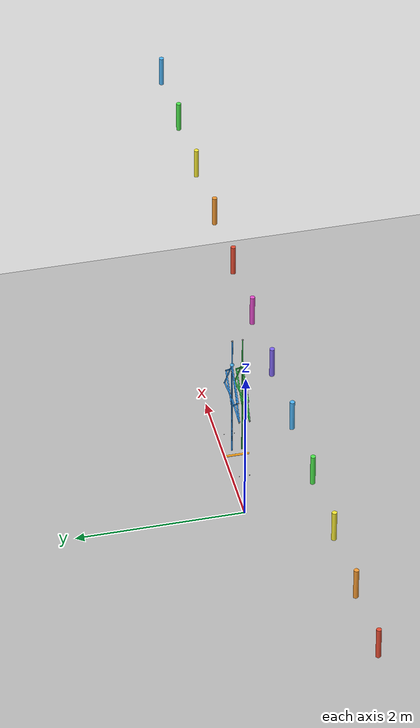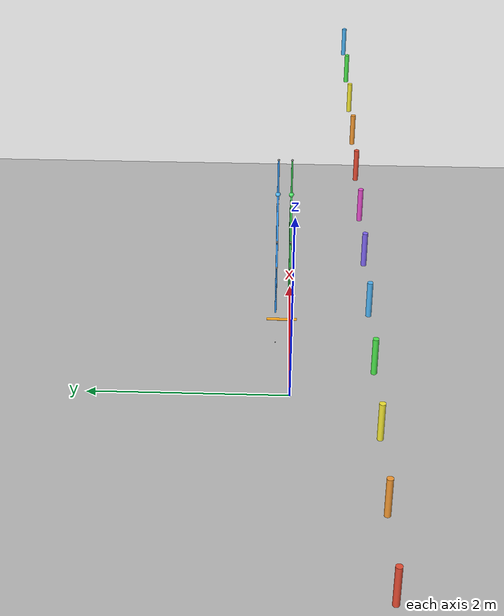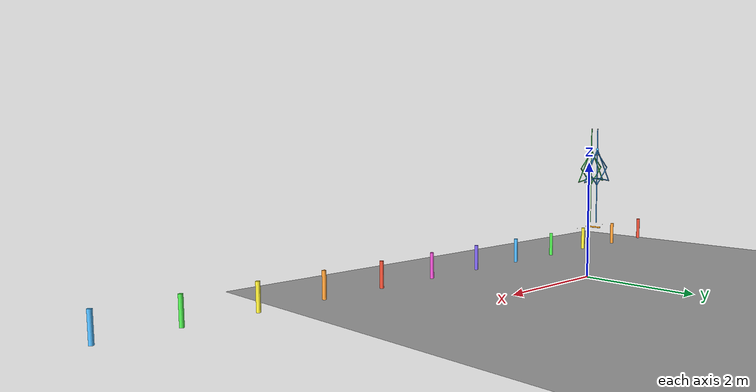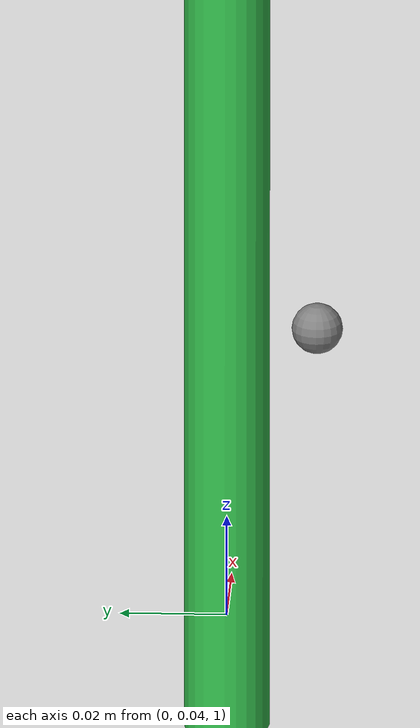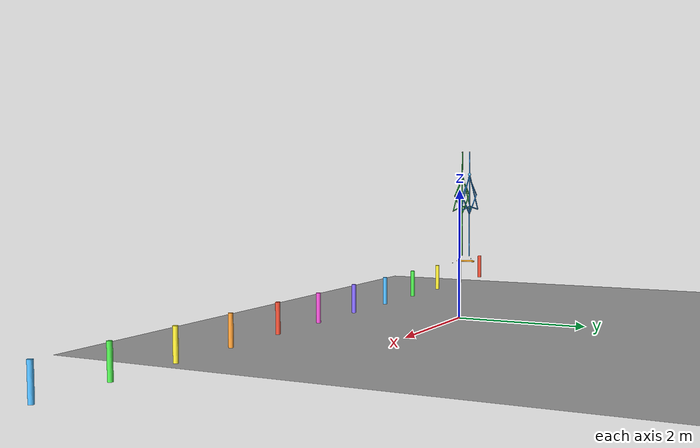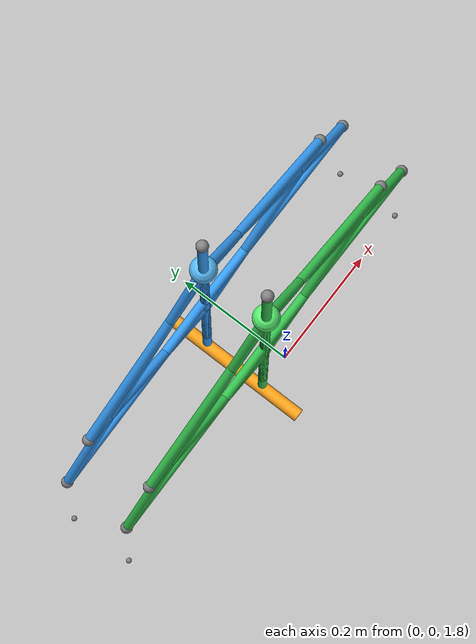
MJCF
<mujoco model="Strandbeest_4Legs">

  <compiler angle="radian" inertiafromgeom="true" autolimits="true" />

  <option gravity="0 0 -9.81" timestep="0.0005" integrator="implicitfast" iterations="800" solver="Newton" tolerance="1e-12" noslip_iterations="10" noslip_tolerance="1e-10" />

  <visual>
    <rgba haze="0.15 0.25 0.35 1" />
  </visual>

  <default>
    <joint damping="0.5" armature="0.005" />
    <geom contype="0" conaffinity="0" friction="0.8 0.1 0.1" rgba="0.5 0.5 0.5 1" density="500" />

  </default>

  <asset>
    <!-- existing materials -->
    <material name="frame" rgba="0.184 0.282 0.345 1" />
    <material name="crank" rgba="1.0 0.639 0.098 1" />
    <material name="foot_mat" rgba="0.9 0.2 0.1 1" />
    <material name="pair04" rgba="0.20 0.75 0.30 1" />
    <material name="pair05" rgba="0.20 0.60 0.95 1" />
    <material name="foot_pair04" rgba="0.35 0.95 0.45 1" />
    <material name="foot_pair05" rgba="0.35 0.75 1.00 1" />

    <!-- NEW: sky and ground textures -->
    <texture name="skybox" type="skybox" builtin="gradient"
             rgb1="0.35 0.55 0.75" rgb2="0.05 0.08 0.15"
             width="512" height="3072" />

    <texture name="grid_tex" type="2d" builtin="checker"
             rgb1="0.25 0.26 0.28" rgb2="0.35 0.36 0.40"
             width="512" height="512" />
    <material name="grid_mat" texture="grid_tex"
              texrepeat="40 10" texuniform="true" reflectance="0.15" />
</asset>

  <worldbody>
<body name="markers" pos="0 0 0">
    <geom type="cylinder" size="0.03 0.2" pos="-3 -0.8 0.5" rgba="0.9 0.3 0.2 1" />
    <geom type="cylinder" size="0.03 0.2" pos="-2 -0.8 0.5" rgba="0.95 0.6 0.2 1" />
    <geom type="cylinder" size="0.03 0.2" pos="-1 -0.8 0.5" rgba="0.95 0.9 0.2 1" />
    <geom type="cylinder" size="0.03 0.2" pos=" 0 -0.8 0.5" rgba="0.3 0.9 0.3 1" />
    <geom type="cylinder" size="0.03 0.2" pos=" 1 -0.8 0.5" rgba="0.3 0.7 0.95 1" />
    <geom type="cylinder" size="0.03 0.2" pos=" 2 -0.8 0.5" rgba="0.5 0.4 0.95 1" />
    <geom type="cylinder" size="0.03 0.2" pos=" 3 -0.8 0.5" rgba="0.9 0.3 0.8 1" />
    <geom type="cylinder" size="0.03 0.2" pos=" 4 -0.8 0.5" rgba="0.9 0.3 0.2 1" />
    <geom type="cylinder" size="0.03 0.2" pos=" 5 -0.8 0.5" rgba="0.95 0.6 0.2 1" />
    <geom type="cylinder" size="0.03 0.2" pos=" 6 -0.8 0.5" rgba="0.95 0.9 0.2 1" />
    <geom type="cylinder" size="0.03 0.2" pos=" 7 -0.8 0.5" rgba="0.3 0.9 0.3 1" />
    <geom type="cylinder" size="0.03 0.2" pos=" 8 -0.8 0.5" rgba="0.3 0.7 0.95 1" />
</body>
    <body name="crossbar" pos="0 0 0.9">
      <joint name="root_slide_x" type="slide" axis="1 0 0" damping="2.0" />
      <geom name="crossbar_geom" type="cylinder" size="0.012 0.14" pos="0 0.10 0" euler="1.5708 0 0" material="crank" />

      <site name="base_p04_l_site" pos="-0.38 0.04000 0" size="0.005" />

      <body name="crank_axle_p04_l" pos="0 0.04000 0.078">
        <joint name="joint_crossbar_crank_p04_l" type="hinge" axis="0 1 0" />

        <body name="bar_m_p04_l" pos="0 0 0" euler="0 0 0">
          <geom name="bar_m_geom_p04_l" type="cylinder" size="0.008 0.075" pos="0 0 0.075" material="pair04" />

          <body name="bar_j_p04_l" pos="0 0 0.15">
            <joint name="joint_m_j_p04_l" type="hinge" axis="0 1 0" />
            <geom name="bar_j_geom_p04_l" type="cylinder" size="0.008 0.25" pos="0 0 0.25" material="pair04" />

            <body name="bar_k_p04_l" pos="0 0 0">
              <joint name="joint_j_k_p04_l" type="hinge" axis="0 1 0" />
              <geom name="bar_k_geom_p04_l" type="cylinder" size="0.008 0.3095" pos="0 0 0.3095" material="pair04" />

              <body name="bar_c_p04_l" pos="0 0 0.619">
                <joint name="joint_k_c_p04_l" type="hinge" axis="0 1 0" />
                <geom name="bar_c_geom_p04_l" type="cylinder" size="0.008 0.1965" pos="0 0 0.1965" material="pair04" />
                <site name="bar_c_tip_p04_l" pos="0 0 0.393" size="0.01" />
              </body>

              <body name="bars_g_h_i_p04_l" pos="0 0 0.619">
                <joint name="joint_k_i_p04_l" type="hinge" axis="0 1 0" />
                <geom name="ghi_g_p04_l" type="cylinder" size="0.008 0.245" pos="0 0 0.245" material="pair04" />
                <geom name="ghi_h_p04_l" type="cylinder" size="0.008 0.1835" pos="0.1812 0 -0.0291" euler="0 1.73 0" material="pair04" />
                <geom name="ghi_i_p04_l" type="cylinder" size="0.008 0.3285" pos="0.1811 0 0.2159" euler="0 2.5576 0" material="pair04" />
                <geom name="foot_p04_l" type="sphere" size="0.022" pos="0 0 0.49" contype="1" conaffinity="1" material="foot_pair04" />
                <site name="ghi_loopsite_p04_l" pos="0.3624 0 -0.0582" size="0.01" />
              </body>
            </body>

            <body name="bars_b_d_e_p04_l" pos="0 0 0.50">
              <joint name="joint_j_e_p04_l" type="hinge" axis="0 1 0" />
              <geom name="bde_b_p04_l" type="cylinder" size="0.008 0.279" pos="0 0 0.279" material="pair04" />
              <geom name="bde_d_p04_l" type="cylinder" size="0.008 0.2005" pos="-0.1488 0 0.4236" euler="0 -2.3056 0" material="pair04" />
              <geom name="bde_e_p04_l" type="cylinder" size="0.008 0.2075" pos="-0.1489 0 0.1446" euler="0 -0.8 0" material="pair04" />
              <site name="bde_loopsite_p04_l" pos="-0.2978 0 0.2892" size="0.01" />

              <body name="bar_f_p04_l" pos="0 0 0.558">
                <joint name="joint_e_f_p04_l" type="hinge" axis="0 1 0" />
                <geom name="bar_f_geom_p04_l" type="cylinder" size="0.008 0.197" pos="0 0 0.197" material="pair04" />
                <site name="bar_f_tip_p04_l" pos="0 0 0.394" size="0.01" />
              </body>
            </body>

          </body>
        </body>
      </body>

      <site name="base_p04_r_site" pos="0.38 0.04000 0" size="0.005" />

      <body name="crank_axle_p04_r" pos="0 0.04000 0.078">
        <joint name="joint_crossbar_crank_p04_r" type="hinge" axis="0 1 0" />

        <body name="bar_m_p04_r" pos="0 0 0" euler="0 0 0">
          <geom name="bar_m_geom_p04_r" type="cylinder" size="0.008 0.075" pos="0 0 0.075" material="pair04" />

          <body name="bar_j_p04_r" pos="0 0 0.15">
            <joint name="joint_m_j_p04_r" type="hinge" axis="0 1 0" />
            <geom name="bar_j_geom_p04_r" type="cylinder" size="0.008 0.25" pos="0 0 0.25" material="pair04" />

            <body name="bar_k_p04_r" pos="0 0 0">
              <joint name="joint_j_k_p04_r" type="hinge" axis="0 1 0" />
              <geom name="bar_k_geom_p04_r" type="cylinder" size="0.008 0.3095" pos="0 0 0.3095" material="pair04" />

              <body name="bar_c_p04_r" pos="0 0 0.619">
                <joint name="joint_k_c_p04_r" type="hinge" axis="0 1 0" />
                <geom name="bar_c_geom_p04_r" type="cylinder" size="0.008 0.1965" pos="0 0 0.1965" material="pair04" />
                <site name="bar_c_tip_p04_r" pos="0 0 0.393" size="0.01" />
              </body>

              <body name="bars_g_h_i_p04_r" pos="0 0 0.619">
                <joint name="joint_k_i_p04_r" type="hinge" axis="0 1 0" />
                <geom name="ghi_g_p04_r" type="cylinder" size="0.008 0.245" pos="0 0 0.245" material="pair04" />
                <geom name="ghi_h_p04_r" type="cylinder" size="0.008 0.1835" pos="-0.1812 0 -0.0291" euler="0 -1.73 0" material="pair04" />
                <geom name="ghi_i_p04_r" type="cylinder" size="0.008 0.3285" pos="-0.1811 0 0.2159" euler="0 -2.5576 0" material="pair04" />
                <geom name="foot_p04_r" type="sphere" size="0.022" pos="0 0 0.49" contype="1" conaffinity="1" material="foot_pair04" />
                <site name="ghi_loopsite_p04_r" pos="-0.3624 0 -0.0582" size="0.01" />
              </body>
            </body>

            <body name="bars_b_d_e_p04_r" pos="0 0 0.5">
              <joint name="joint_j_e_p04_r" type="hinge" axis="0 1 0" />
              <geom name="bde_b_p04_r" type="cylinder" size="0.008 0.279" pos="0 0 0.279" material="pair04" />
              <geom name="bde_d_p04_r" type="cylinder" size="0.008 0.2005" pos="0.1488 0 0.4236" euler="0 2.3056 0" material="pair04" />
              <geom name="bde_e_p04_r" type="cylinder" size="0.008 0.2075" pos="0.1489 0 0.1446" euler="0 0.8 0" material="pair04" />
              <site name="bde_loopsite_p04_r" pos="0.2978 0 0.2892" size="0.01" />

              <body name="bar_f_p04_r" pos="0 0 0.558">
                <joint name="joint_e_f_p04_r" type="hinge" axis="0 1 0" />
                <geom name="bar_f_geom_p04_r" type="cylinder" size="0.008 0.197" pos="0 0 0.197" material="pair04" />
                <site name="bar_f_tip_p04_r" pos="0 0 0.394" size="0.01" />
              </body>
            </body>

          </body>
        </body>
      </body>

      <site name="base_p05_l_site" pos="-0.38 0.16000 0" size="0.005" />

      <body name="crank_axle_p05_l" pos="0 0.16000 0.078">
        <joint name="joint_crossbar_crank_p05_l" type="hinge" axis="0 1 0" />

        <body name="bar_m_p05_l" pos="0 0 0" euler="0 0 0">
          <geom name="bar_m_geom_p05_l" type="cylinder" size="0.008 0.075" pos="0 0 0.075" material="pair05" />

          <body name="bar_j_p05_l" pos="0 0 0.15">
            <joint name="joint_m_j_p05_l" type="hinge" axis="0 1 0" />
            <geom name="bar_j_geom_p05_l" type="cylinder" size="0.008 0.25" pos="0 0 0.25" material="pair05" />

            <body name="bar_k_p05_l" pos="0 0 0">
              <joint name="joint_j_k_p05_l" type="hinge" axis="0 1 0" />
              <geom name="bar_k_geom_p05_l" type="cylinder" size="0.008 0.3095" pos="0 0 0.3095" material="pair05" />

              <body name="bar_c_p05_l" pos="0 0 0.619">
                <joint name="joint_k_c_p05_l" type="hinge" axis="0 1 0" />
                <geom name="bar_c_geom_p05_l" type="cylinder" size="0.008 0.1965" pos="0 0 0.1965" material="pair05" />
                <site name="bar_c_tip_p05_l" pos="0 0 0.393" size="0.01" />
              </body>

              <body name="bars_g_h_i_p05_l" pos="0 0 0.619">
                <joint name="joint_k_i_p05_l" type="hinge" axis="0 1 0" />
                <geom name="ghi_g_p05_l" type="cylinder" size="0.008 0.245" pos="0 0 0.245" material="pair05" />
                <geom name="ghi_h_p05_l" type="cylinder" size="0.008 0.1835" pos="0.1812 0 -0.0291" euler="0 1.73 0" material="pair05" />
                <geom name="ghi_i_p05_l" type="cylinder" size="0.008 0.3285" pos="0.1811 0 0.2159" euler="0 2.5576 0" material="pair05" />
                <geom name="foot_p05_l" type="sphere" size="0.022" pos="0 0 0.49" contype="1" conaffinity="1" material="foot_pair05" />
                <site name="ghi_loopsite_p05_l" pos="0.3624 0 -0.0582" size="0.01" />
              </body>
            </body>

            <body name="bars_b_d_e_p05_l" pos="0 0 0.50">
              <joint name="joint_j_e_p05_l" type="hinge" axis="0 1 0" />
              <geom name="bde_b_p05_l" type="cylinder" size="0.008 0.279" pos="0 0 0.279" material="pair05" />
              <geom name="bde_d_p05_l" type="cylinder" size="0.008 0.2005" pos="-0.1488 0 0.4236" euler="0 -2.3056 0" material="pair05" />
              <geom name="bde_e_p05_l" type="cylinder" size="0.008 0.2075" pos="-0.1489 0 0.1446" euler="0 -0.8 0" material="pair05" />
              <site name="bde_loopsite_p05_l" pos="-0.2978 0 0.2892" size="0.01" />

              <body name="bar_f_p05_l" pos="0 0 0.558">
                <joint name="joint_e_f_p05_l" type="hinge" axis="0 1 0" />
                <geom name="bar_f_geom_p05_l" type="cylinder" size="0.008 0.197" pos="0 0 0.197" material="pair05" />
                <site name="bar_f_tip_p05_l" pos="0 0 0.394" size="0.01" />
              </body>
            </body>

          </body>
        </body>
      </body>

      <site name="base_p05_r_site" pos="0.38 0.16000 0" size="0.005" />

      <body name="crank_axle_p05_r" pos="0 0.16000 0.078">
        <joint name="joint_crossbar_crank_p05_r" type="hinge" axis="0 1 0" />

        <body name="bar_m_p05_r" pos="0 0 0" euler="0 0 0">
          <geom name="bar_m_geom_p05_r" type="cylinder" size="0.008 0.075" pos="0 0 0.075" material="pair05" />

          <body name="bar_j_p05_r" pos="0 0 0.15">
            <joint name="joint_m_j_p05_r" type="hinge" axis="0 1 0" />
            <geom name="bar_j_geom_p05_r" type="cylinder" size="0.008 0.25" pos="0 0 0.25" material="pair05" />

            <body name="bar_k_p05_r" pos="0 0 0">
              <joint name="joint_j_k_p05_r" type="hinge" axis="0 1 0" />
              <geom name="bar_k_geom_p05_r" type="cylinder" size="0.008 0.3095" pos="0 0 0.3095" material="pair05" />

              <body name="bar_c_p05_r" pos="0 0 0.619">
                <joint name="joint_k_c_p05_r" type="hinge" axis="0 1 0" />
                <geom name="bar_c_geom_p05_r" type="cylinder" size="0.008 0.1965" pos="0 0 0.1965" material="pair05" />
                <site name="bar_c_tip_p05_r" pos="0 0 0.393" size="0.01" />
              </body>

              <body name="bars_g_h_i_p05_r" pos="0 0 0.619">
                <joint name="joint_k_i_p05_r" type="hinge" axis="0 1 0" />
                <geom name="ghi_g_p05_r" type="cylinder" size="0.008 0.245" pos="0 0 0.245" material="pair05" />
                <geom name="ghi_h_p05_r" type="cylinder" size="0.008 0.1835" pos="-0.1812 0 -0.0291" euler="0 -1.73 0" material="pair05" />
                <geom name="ghi_i_p05_r" type="cylinder" size="0.008 0.3285" pos="-0.1811 0 0.2159" euler="0 -2.5576 0" material="pair05" />
                <geom name="foot_p05_r" type="sphere" size="0.022" pos="0 0 0.49" contype="1" conaffinity="1" material="foot_pair05" />
                <site name="ghi_loopsite_p05_r" pos="-0.3624 0 -0.0582" size="0.01" />
              </body>
            </body>

            <body name="bars_b_d_e_p05_r" pos="0 0 0.5">
              <joint name="joint_j_e_p05_r" type="hinge" axis="0 1 0" />
              <geom name="bde_b_p05_r" type="cylinder" size="0.008 0.279" pos="0 0 0.279" material="pair05" />
              <geom name="bde_d_p05_r" type="cylinder" size="0.008 0.2005" pos="0.1488 0 0.4236" euler="0 2.3056 0" material="pair05" />
              <geom name="bde_e_p05_r" type="cylinder" size="0.008 0.2075" pos="0.1489 0 0.1446" euler="0 0.8 0" material="pair05" />
              <site name="bde_loopsite_p05_r" pos="0.2978 0 0.2892" size="0.01" />

              <body name="bar_f_p05_r" pos="0 0 0.558">
                <joint name="joint_e_f_p05_r" type="hinge" axis="0 1 0" />
                <geom name="bar_f_geom_p05_r" type="cylinder" size="0.008 0.197" pos="0 0 0.197" material="pair05" />
                <site name="bar_f_tip_p05_r" pos="0 0 0.394" size="0.01" />
              </body>
            </body>

          </body>
        </body>
      </body>

    </body>

    <geom name="ground" type="plane" size="5 5 0.1" pos="0 0 0" rgba="0.72 0.72 0.72 1" contype="1" conaffinity="1" />
  </worldbody>

  <actuator>
    <velocity name="crank_motor_p04_l" joint="joint_crossbar_crank_p04_l" gear="1" kv="500" ctrllimited="true" ctrlrange="-15 15" />
    <velocity name="crank_motor_p04_r" joint="joint_crossbar_crank_p04_r" gear="1" kv="500" ctrllimited="true" ctrlrange="-15 15" />
    <velocity name="crank_motor_p05_l" joint="joint_crossbar_crank_p05_l" gear="1" kv="500" ctrllimited="true" ctrlrange="-15 15" />
    <velocity name="crank_motor_p05_r" joint="joint_crossbar_crank_p05_r" gear="1" kv="500" ctrllimited="true" ctrlrange="-15 15" />
  </actuator>

  <equality>
  <!-- Lock crank phases: master = joint_crossbar_crank_p04_l -->
<!-- polycoef = [c0, c1, 0, 0, 0] means joint1 = c0 + c1*joint2 -->

<!-- p04_r = p04_l - π   (so when p04_l=π, p04_r=0) -->
<joint name="phase_p04_r" joint1="joint_crossbar_crank_p04_r"
       joint2="joint_crossbar_crank_p04_l"
       polycoef="-3.141592654 1 0 0 0" />

<!-- p05_l = p04_l + π/3   (so when p04_l=π, p05_l=4π/3) -->
<joint name="phase_p05_l" joint1="joint_crossbar_crank_p05_l"
       joint2="joint_crossbar_crank_p04_l"
       polycoef="1.047197551 1 0 0 0" />

<!-- p05_r = p04_l - 2π/3   (so when p04_l=π, p05_r=π/3) -->
<joint name="phase_p05_r" joint1="joint_crossbar_crank_p05_r"
       joint2="joint_crossbar_crank_p04_l"
       polycoef="-2.094395102 1 0 0 0" />
    <connect name="loop_f_g_p04_l" site1="bar_f_tip_p04_l" site2="ghi_loopsite_p04_l" solimp="0.99 0.9999 0.0001 0.5 2" solref="0.002 1" />

    <connect name="loop_b_c_p04_l" site1="bde_loopsite_p04_l" site2="bar_c_tip_p04_l" solimp="0.99 0.9999 0.0001 0.5 2" solref="0.002 1" />

    <connect name="loop_a_c_p04_l" site1="base_p04_l_site" site2="bar_c_tip_p04_l" solimp="0.99 0.9999 0.0001 0.5 2" solref="0.002 1" />

    <connect name="loop_f_g_p04_r" site1="bar_f_tip_p04_r" site2="ghi_loopsite_p04_r" solimp="0.99 0.9999 0.0001 0.5 2" solref="0.002 1" />

    <connect name="loop_b_c_p04_r" site1="bde_loopsite_p04_r" site2="bar_c_tip_p04_r" solimp="0.99 0.9999 0.0001 0.5 2" solref="0.002 1" />

    <connect name="loop_a_c_p04_r" site1="base_p04_r_site" site2="bar_c_tip_p04_r" solimp="0.99 0.9999 0.0001 0.5 2" solref="0.002 1" />

    <connect name="loop_f_g_p05_l" site1="bar_f_tip_p05_l" site2="ghi_loopsite_p05_l" solimp="0.99 0.9999 0.0001 0.5 2" solref="0.002 1" />

    <connect name="loop_b_c_p05_l" site1="bde_loopsite_p05_l" site2="bar_c_tip_p05_l" solimp="0.99 0.9999 0.0001 0.5 2" solref="0.002 1" />

    <connect name="loop_a_c_p05_l" site1="base_p05_l_site" site2="bar_c_tip_p05_l" solimp="0.99 0.9999 0.0001 0.5 2" solref="0.002 1" />

    <connect name="loop_f_g_p05_r" site1="bar_f_tip_p05_r" site2="ghi_loopsite_p05_r" solimp="0.99 0.9999 0.0001 0.5 2" solref="0.002 1" />

    <connect name="loop_b_c_p05_r" site1="bde_loopsite_p05_r" site2="bar_c_tip_p05_r" solimp="0.99 0.9999 0.0001 0.5 2" solref="0.002 1" />

    <connect name="loop_a_c_p05_r" site1="base_p05_r_site" site2="bar_c_tip_p05_r" solimp="0.99 0.9999 0.0001 0.5 2" solref="0.002 1" />
  </equality>

<keyframe>
  <key name="init" qpos="
0.000000000
3.141592654 -3.582539594 -1.602578219 2.494024554 -0.774610552 -1.487635166 -0.849320061
0.000000000 13.773446140 1.588380296 -2.348113563 0.620536940 1.346324430 1.127332039
4.188790205 -11.079141647 -1.321917819 2.923861724 -1.534656301 -1.819191839 0.114513913
1.047197551 8.367236356 1.506217000 -2.120541209 0.414523199 1.111969167 1.535104926
" />
</keyframe>

</mujoco>
